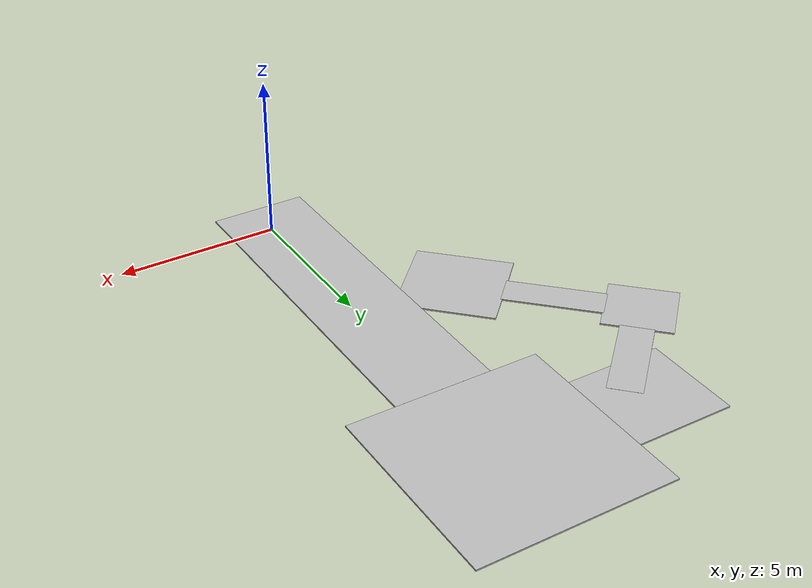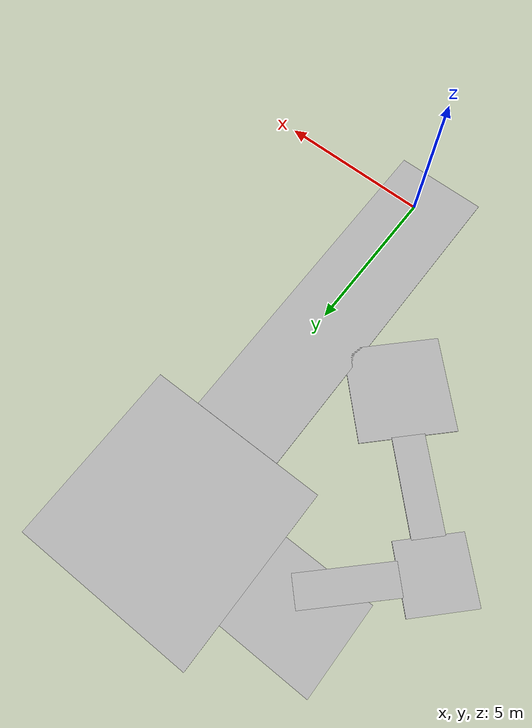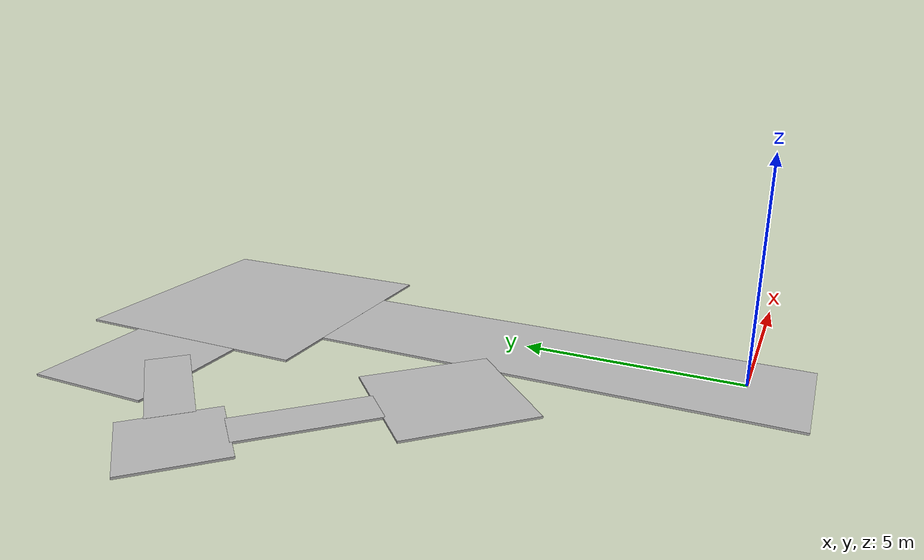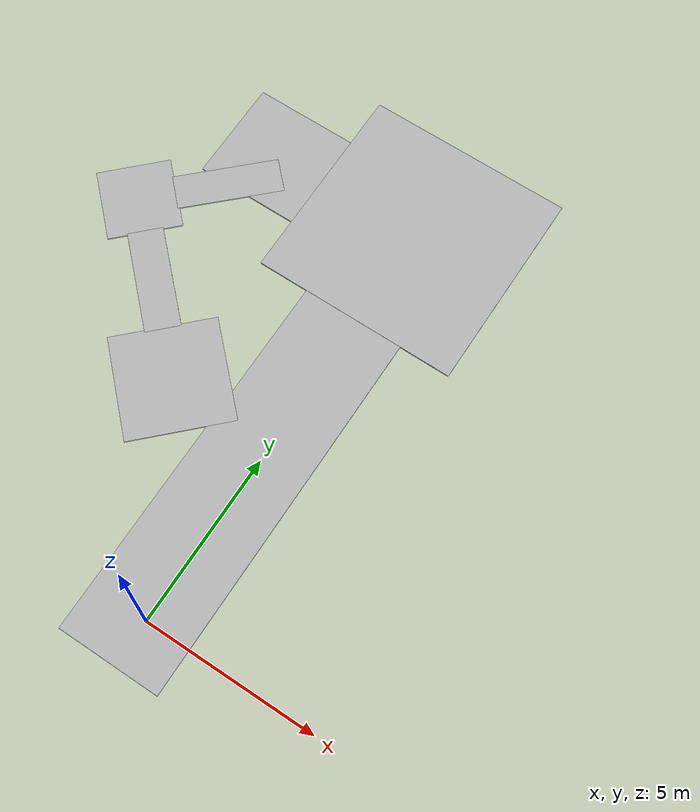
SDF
<sdf version="1.6">
 <world name="default">
  <light name="sun" type="directional">
   <pose>0 0 10 0 -0 0</pose>
   <diffuse>0.8 0.8 0.8 1</diffuse>
   <specular>0.2 0.2 0.2 1</specular>
   <attenuation>
    <range>1000</range>
    <constant>0.9</constant>
    <linear>0.01</linear>
    <quadratic>0.001</quadratic>
   </attenuation>
   <direction>-0.5 0.1 -0.9</direction>
  </light>
  <gravity>0 0 -9.8</gravity>
  <magnetic_field>6e-06 2.3e-05 -4.2e-05</magnetic_field>
  <atmosphere type="adiabatic"/>
  <physics name="default_physics" default="0" type="ode">
   <max_step_size>0.001</max_step_size>
   <real_time_factor>1</real_time_factor>
   <real_time_update_rate>1000</real_time_update_rate>
  </physics>
  <scene><ambient>0.4 0.4 0.4 1</ambient><background>0.7 0.7 0.7 1</background><shadows>1</shadows></scene>
  <audio><device>default</device></audio>
  <spherical_coordinates>
   <surface_model>EARTH_WGS84</surface_model>
   <latitude_deg>0</latitude_deg>
   <longitude_deg>0</longitude_deg>
   <elevation>0</elevation>
   <heading_deg>0</heading_deg>
  </spherical_coordinates>
  <model name="start_w400_black">
   <static>1</static>
   <link name="link">
    <collision name="collision">
     <geometry><box><size>11 3 0.05</size></box></geometry>
     <surface><friction><ode><mu>100</mu><mu2>50</mu2></ode></friction></surface>
    </collision>
    <visual name="visual">
     <cast_shadows>0</cast_shadows>
     <geometry><box><size>11 3 0.05</size></box></geometry>
     <material>
      <script>
       <uri>model://start_w400_black/materials/scripts</uri>
       <uri>model://start_w400_black/materials/textures/</uri>
       <name>start_w400_black/Image</name>
      </script>
     </material>
    </visual>
   </link>
   <pose>-0.193338 4.17342 0 0 -0 1.57079</pose>
  </model>
  <model name="left_curve_r300_a90_00">
   <static>1</static>
   <link name="link">
    <collision name="collision">
     <geometry><box><size>6 6 0.05</size></box></geometry>
     <surface><friction><ode><mu>100</mu><mu2>50</mu2></ode></friction></surface>
    </collision>
    <visual name="visual">
     <cast_shadows>0</cast_shadows>
     <geometry><box><size>6 6 0.05</size></box></geometry>
     <material>
      <script>
       <uri>model://left_curve_r300_a90_00/materials/scripts</uri>
       <uri>model://left_curve_r300_a90_00/materials/textures/</uri>
       <name>left_curve_r300_a90_00/Image</name>
      </script>
     </material>
    </visual>
   </link>
   <pose>-0.193023 12.674 0 0 -0 3.14159</pose>
  </model>
  <model name="left_curve_r150_a45_030">
   <static>1</static>
   <link name="link">
    <collision name="collision">
     <geometry><box><size>3 3 0.05</size></box></geometry>
     <surface><friction><ode><mu>100</mu><mu2>50</mu2></ode></friction></surface>
    </collision>
    <visual name="visual">
     <cast_shadows>0</cast_shadows>
     <geometry><box><size>3 3 0.05</size></box></geometry>
     <material>
      <script>
       <uri>model://left_curve_r150_a45_030/materials/scripts</uri>
       <uri>model://left_curve_r150_a45_030/materials/textures/</uri>
       <name>left_curve_r150_a45_030/Image</name>
      </script>
     </material>
    </visual>
   </link>
   <pose>-4.6927 12.6748 0 0 0 -1.5708</pose>
  </model>
  <model name="stop_crossing">
   <static>1</static>
   <link name="link">
    <collision name="collision">
     <geometry><box><size>2.1 2.1 0.05</size></box></geometry>
     <surface><friction><ode><mu>100</mu><mu2>50</mu2></ode></friction></surface>
    </collision>
    <visual name="visual">
     <cast_shadows>0</cast_shadows>
     <geometry><box><size>2.1 2.1 0.05</size></box></geometry>
     <material>
      <script>
       <uri>model://stop_crossing/materials/scripts</uri>
       <uri>model://stop_crossing/materials/textures/</uri>
       <name>stop_crossing/Image</name>
      </script>
     </material>
    </visual>
   </link>
   <pose>-7.10184 9.42657 0 0 -0 0.789918</pose>
  </model>
  <model name="straight_300_o_25">
   <static>1</static>
   <link name="link">
    <collision name="collision">
     <geometry><box><size>3 1 0.05</size></box></geometry>
     <surface><friction><ode><mu>100</mu><mu2>50</mu2></ode></friction></surface>
    </collision>
    <visual name="visual">
     <cast_shadows>0</cast_shadows>
     <geometry><box><size>3 1 0.05</size></box></geometry>
     <material>
      <script>
       <uri>model://straight_300_o_25/materials/scripts</uri>
       <uri>model://straight_300_o_25/materials/textures/</uri>
       <name>straight_300_o_25/Image</name>
      </script>
     </material>
    </visual>
   </link>
   <pose>-5.32382 11.1876 0.001 0 -0 0.774294</pose>
  </model>
  <model name="straight_300_o_25_0">
   <static>1</static>
   <link name="link">
    <collision name="collision">
     <geometry><box><size>3 1 0.05</size></box></geometry>
     <surface><friction><ode><mu>100</mu><mu2>50</mu2></ode></friction></surface>
    </collision>
    <visual name="visual">
     <cast_shadows>0</cast_shadows>
     <geometry><box><size>3 1 0.05</size></box></geometry>
     <material>
      <script>
       <uri>model://straight_300_o_25/materials/scripts</uri>
       <uri>model://straight_300_o_25/materials/textures/</uri>
       <name>straight_300_o_25/Image</name>
      </script>
     </material>
    </visual>
   </link>
   <pose>-5.32432 7.66399 0.00145 0 0 -0.781825</pose>
  </model>
  <model name="right_curve_r150_a90_o30">
   <static>1</static>
   <link name="link">
    <collision name="collision">
     <geometry><box><size>3 3 0.05</size></box></geometry>
     <surface><friction><ode><mu>100</mu><mu2>50</mu2></ode></friction></surface>
    </collision>
    <visual name="visual">
     <cast_shadows>0</cast_shadows>
     <geometry><box><size>3 3 0.05</size></box></geometry>
     <material>
      <script>
       <uri>model://right_curve_r150_a90_o30/materials/scripts</uri>
       <uri>model://right_curve_r150_a90_o30/materials/textures/</uri>
       <name>right_curve_r150_a90_o30/Image</name>
      </script>
     </material>
    </visual>
   </link>
   <pose>-3.23155 5.58171 0 0 -0 2.35677</pose>
  </model>
 </world>
</sdf>
